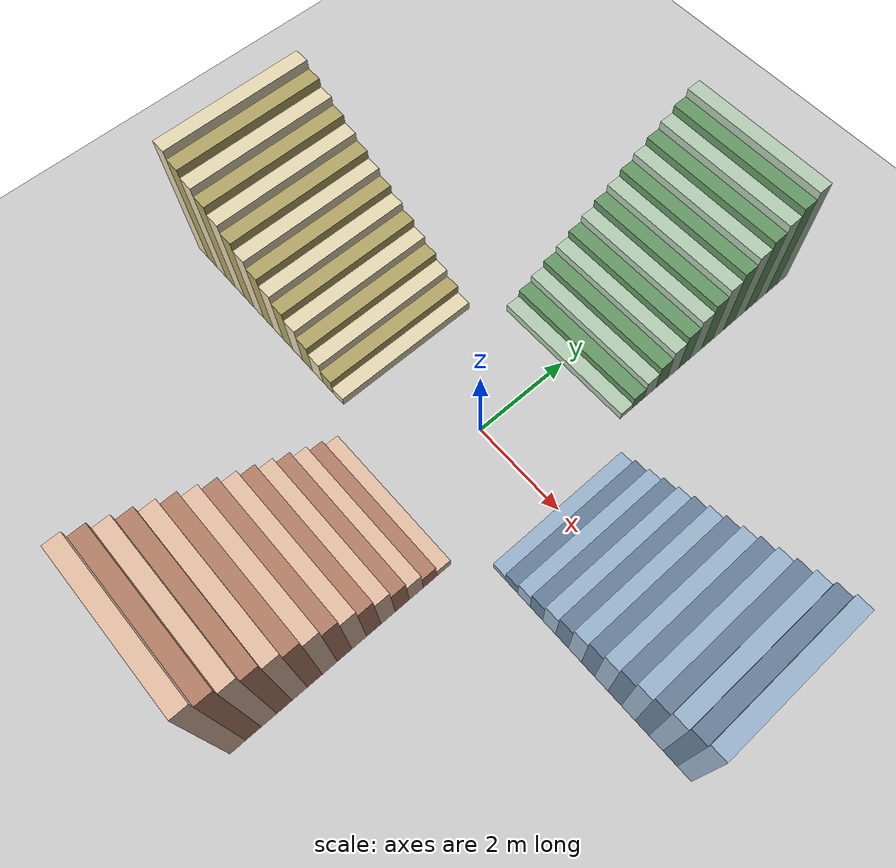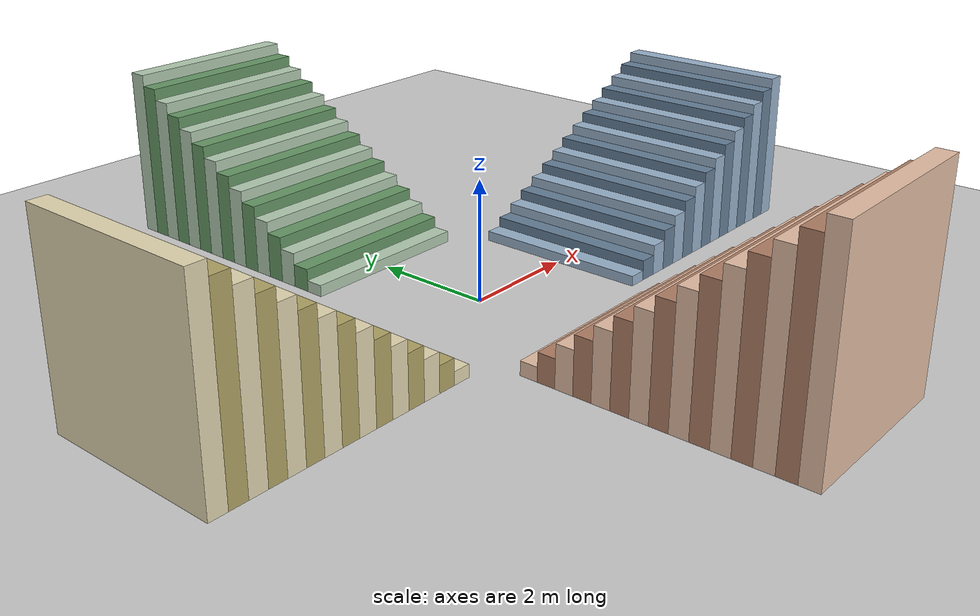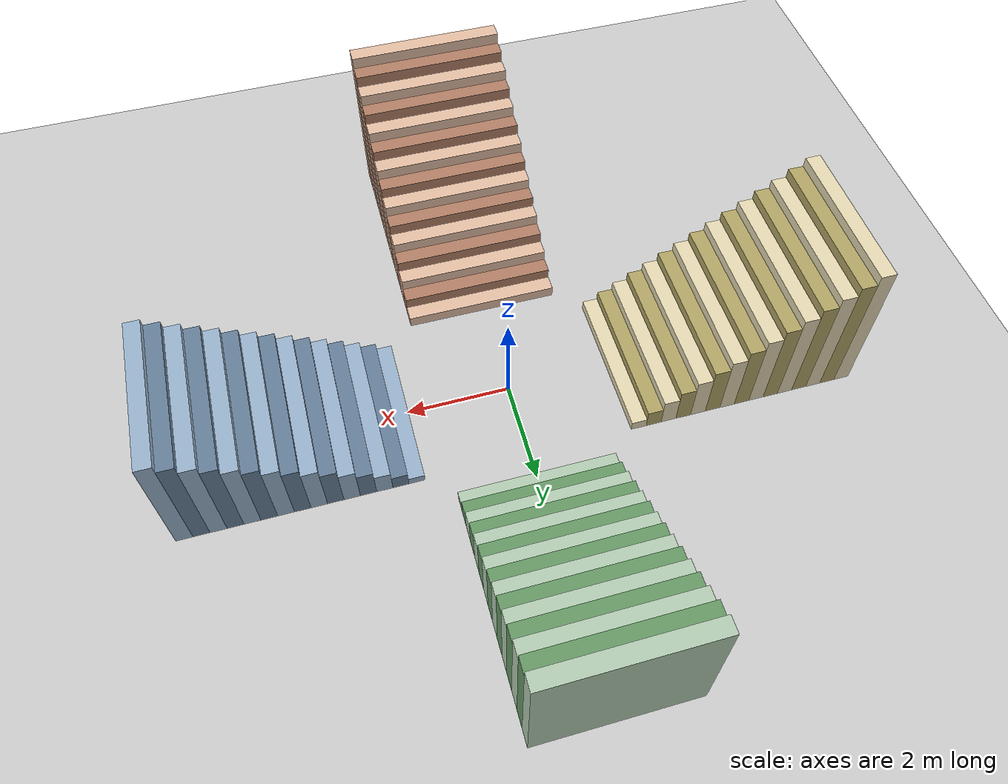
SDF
<?xml version="1.0" ?>
<sdf version="1.5">
  <world name="quadruped_stair_pro_v3_friction">

    <physics type="ode">
      <max_step_size>0.0005</max_step_size>
      <real_time_factor>1</real_time_factor>
      <real_time_update_rate>2000</real_time_update_rate>
      <gravity>0 0 -9.81</gravity>
      <ode>
        <solver>
          <type>quick</type>
          <iters>150</iters>
          <sor>1.0</sor>
        </solver>
        <constraints>
          <cfm>0.0001</cfm>
          <erp>0.2</erp>
          <contact_max_correcting_vel>10.0</contact_max_correcting_vel>
          <contact_surface_layer>0.001</contact_surface_layer>
        </constraints>
      </ode>
    </physics>

    <include><uri>model://sun</uri></include>

    <model name="ground_plane_friction">
      <static>true</static>
      <link name="link">
        <collision name="collision">
          <geometry><plane><normal>0 0 1</normal><size>100 100</size></plane></geometry>
          <surface>
            <friction>
              <ode><mu>1.0</mu><mu2>1.0</mu2></ode>
            </friction>
          </surface>
        </collision>
        <visual name="visual">
          <geometry><plane><normal>0 0 1</normal><size>100 100</size></plane></geometry>
          <material><ambient>0.8 0.8 0.8 1</ambient><diffuse>0.8 0.8 0.8 1</diffuse></material>
        </visual>
      </link>
    </model>

    <model name="stair_challenge_env">
      <static>true</static>

      <!-- 17 cm stairs -->
      <link name="step_17cm_1"><pose>2.15 0 0.085 0 0 0</pose><visual name="v"><geometry><box><size>0.3 3.0 0.17</size></box></geometry><material><ambient>0.6 0.7 0.8 1</ambient><diffuse>0.6 0.7 0.8 1</diffuse></material></visual><collision name="c"><geometry><box><size>0.3 3.0 0.17</size></box></geometry><surface><friction><ode><mu>1.0</mu><mu2>1.0</mu2></ode></friction></surface></collision></link>
      <link name="step_17cm_2"><pose>2.45 0 0.170 0 0 0</pose><visual name="v"><geometry><box><size>0.3 3.0 0.34</size></box></geometry><material><ambient>0.4 0.5 0.6 1</ambient><diffuse>0.4 0.5 0.6 1</diffuse></material></visual><collision name="c"><geometry><box><size>0.3 3.0 0.34</size></box></geometry><surface><friction><ode><mu>1.0</mu><mu2>1.0</mu2></ode></friction></surface></collision></link>
      <link name="step_17cm_3"><pose>2.75 0 0.255 0 0 0</pose><visual name="v"><geometry><box><size>0.3 3.0 0.51</size></box></geometry><material><ambient>0.6 0.7 0.8 1</ambient><diffuse>0.6 0.7 0.8 1</diffuse></material></visual><collision name="c"><geometry><box><size>0.3 3.0 0.51</size></box></geometry><surface><friction><ode><mu>1.0</mu><mu2>1.0</mu2></ode></friction></surface></collision></link>
      <link name="step_17cm_4"><pose>3.05 0 0.340 0 0 0</pose><visual name="v"><geometry><box><size>0.3 3.0 0.68</size></box></geometry><material><ambient>0.4 0.5 0.6 1</ambient><diffuse>0.4 0.5 0.6 1</diffuse></material></visual><collision name="c"><geometry><box><size>0.3 3.0 0.68</size></box></geometry><surface><friction><ode><mu>1.0</mu><mu2>1.0</mu2></ode></friction></surface></collision></link>
      <link name="step_17cm_5"><pose>3.35 0 0.425 0 0 0</pose><visual name="v"><geometry><box><size>0.3 3.0 0.85</size></box></geometry><material><ambient>0.6 0.7 0.8 1</ambient><diffuse>0.6 0.7 0.8 1</diffuse></material></visual><collision name="c"><geometry><box><size>0.3 3.0 0.85</size></box></geometry><surface><friction><ode><mu>1.0</mu><mu2>1.0</mu2></ode></friction></surface></collision></link>
      <link name="step_17cm_6"><pose>3.65 0 0.510 0 0 0</pose><visual name="v"><geometry><box><size>0.3 3.0 1.02</size></box></geometry><material><ambient>0.4 0.5 0.6 1</ambient><diffuse>0.4 0.5 0.6 1</diffuse></material></visual><collision name="c"><geometry><box><size>0.3 3.0 1.02</size></box></geometry><surface><friction><ode><mu>1.0</mu><mu2>1.0</mu2></ode></friction></surface></collision></link>
      <link name="step_17cm_7"><pose>3.95 0 0.595 0 0 0</pose><visual name="v"><geometry><box><size>0.3 3.0 1.19</size></box></geometry><material><ambient>0.6 0.7 0.8 1</ambient><diffuse>0.6 0.7 0.8 1</diffuse></material></visual><collision name="c"><geometry><box><size>0.3 3.0 1.19</size></box></geometry><surface><friction><ode><mu>1.0</mu><mu2>1.0</mu2></ode></friction></surface></collision></link>
      <link name="step_17cm_8"><pose>4.25 0 0.680 0 0 0</pose><visual name="v"><geometry><box><size>0.3 3.0 1.36</size></box></geometry><material><ambient>0.4 0.5 0.6 1</ambient><diffuse>0.4 0.5 0.6 1</diffuse></material></visual><collision name="c"><geometry><box><size>0.3 3.0 1.36</size></box></geometry><surface><friction><ode><mu>1.0</mu><mu2>1.0</mu2></ode></friction></surface></collision></link>
      <link name="step_17cm_9"><pose>4.55 0 0.765 0 0 0</pose><visual name="v"><geometry><box><size>0.3 3.0 1.53</size></box></geometry><material><ambient>0.6 0.7 0.8 1</ambient><diffuse>0.6 0.7 0.8 1</diffuse></material></visual><collision name="c"><geometry><box><size>0.3 3.0 1.53</size></box></geometry><surface><friction><ode><mu>1.0</mu><mu2>1.0</mu2></ode></friction></surface></collision></link>
      <link name="step_17cm_10"><pose>4.85 0 0.850 0 0 0</pose><visual name="v"><geometry><box><size>0.3 3.0 1.70</size></box></geometry><material><ambient>0.4 0.5 0.6 1</ambient><diffuse>0.4 0.5 0.6 1</diffuse></material></visual><collision name="c"><geometry><box><size>0.3 3.0 1.70</size></box></geometry><surface><friction><ode><mu>1.0</mu><mu2>1.0</mu2></ode></friction></surface></collision></link>
      <link name="step_17cm_11"><pose>5.15 0 0.935 0 0 0</pose><visual name="v"><geometry><box><size>0.3 3.0 1.87</size></box></geometry><material><ambient>0.6 0.7 0.8 1</ambient><diffuse>0.6 0.7 0.8 1</diffuse></material></visual><collision name="c"><geometry><box><size>0.3 3.0 1.87</size></box></geometry><surface><friction><ode><mu>1.0</mu><mu2>1.0</mu2></ode></friction></surface></collision></link>
      <link name="step_17cm_12"><pose>5.45 0 1.020 0 0 0</pose><visual name="v"><geometry><box><size>0.3 3.0 2.04</size></box></geometry><material><ambient>0.4 0.5 0.6 1</ambient><diffuse>0.4 0.5 0.6 1</diffuse></material></visual><collision name="c"><geometry><box><size>0.3 3.0 2.04</size></box></geometry><surface><friction><ode><mu>1.0</mu><mu2>1.0</mu2></ode></friction></surface></collision></link>
      <link name="step_17cm_13"><pose>5.75 0 1.105 0 0 0</pose><visual name="v"><geometry><box><size>0.3 3.0 2.21</size></box></geometry><material><ambient>0.6 0.7 0.8 1</ambient><diffuse>0.6 0.7 0.8 1</diffuse></material></visual><collision name="c"><geometry><box><size>0.3 3.0 2.21</size></box></geometry><surface><friction><ode><mu>1.0</mu><mu2>1.0</mu2></ode></friction></surface></collision></link>
      <link name="step_17cm_14"><pose>6.05 0 1.190 0 0 0</pose><visual name="v"><geometry><box><size>0.3 3.0 2.38</size></box></geometry><material><ambient>0.4 0.5 0.6 1</ambient><diffuse>0.4 0.5 0.6 1</diffuse></material></visual><collision name="c"><geometry><box><size>0.3 3.0 2.38</size></box></geometry><surface><friction><ode><mu>1.0</mu><mu2>1.0</mu2></ode></friction></surface></collision></link>
      <link name="step_17cm_15"><pose>6.35 0 1.275 0 0 0</pose><visual name="v"><geometry><box><size>0.3 3.0 2.55</size></box></geometry><material><ambient>0.6 0.7 0.8 1</ambient><diffuse>0.6 0.7 0.8 1</diffuse></material></visual><collision name="c"><geometry><box><size>0.3 3.0 2.55</size></box></geometry><surface><friction><ode><mu>1.0</mu><mu2>1.0</mu2></ode></friction></surface></collision></link>

      <!-- 19 cm stairs -->
      <link name="step_19cm_1"><pose>0 2.15 0.095 0 0 0</pose><visual name="v"><geometry><box><size>3.0 0.3 0.19</size></box></geometry><material><ambient>0.7 0.8 0.7 1</ambient><diffuse>0.7 0.8 0.7 1</diffuse></material></visual><collision name="c"><geometry><box><size>3.0 0.3 0.19</size></box></geometry><surface><friction><ode><mu>1.0</mu><mu2>1.0</mu2></ode></friction></surface></collision></link>
      <link name="step_19cm_2"><pose>0 2.45 0.190 0 0 0</pose><visual name="v"><geometry><box><size>3.0 0.3 0.38</size></box></geometry><material><ambient>0.4 0.6 0.4 1</ambient><diffuse>0.4 0.6 0.4 1</diffuse></material></visual><collision name="c"><geometry><box><size>3.0 0.3 0.38</size></box></geometry><surface><friction><ode><mu>1.0</mu><mu2>1.0</mu2></ode></friction></surface></collision></link>
      <link name="step_19cm_3"><pose>0 2.75 0.285 0 0 0</pose><visual name="v"><geometry><box><size>3.0 0.3 0.57</size></box></geometry><material><ambient>0.7 0.8 0.7 1</ambient><diffuse>0.7 0.8 0.7 1</diffuse></material></visual><collision name="c"><geometry><box><size>3.0 0.3 0.57</size></box></geometry><surface><friction><ode><mu>1.0</mu><mu2>1.0</mu2></ode></friction></surface></collision></link>
      <link name="step_19cm_4"><pose>0 3.05 0.380 0 0 0</pose><visual name="v"><geometry><box><size>3.0 0.3 0.76</size></box></geometry><material><ambient>0.4 0.6 0.4 1</ambient><diffuse>0.4 0.6 0.4 1</diffuse></material></visual><collision name="c"><geometry><box><size>3.0 0.3 0.76</size></box></geometry><surface><friction><ode><mu>1.0</mu><mu2>1.0</mu2></ode></friction></surface></collision></link>
      <link name="step_19cm_5"><pose>0 3.35 0.475 0 0 0</pose><visual name="v"><geometry><box><size>3.0 0.3 0.95</size></box></geometry><material><ambient>0.7 0.8 0.7 1</ambient><diffuse>0.7 0.8 0.7 1</diffuse></material></visual><collision name="c"><geometry><box><size>3.0 0.3 0.95</size></box></geometry><surface><friction><ode><mu>1.0</mu><mu2>1.0</mu2></ode></friction></surface></collision></link>
      <link name="step_19cm_6"><pose>0 3.65 0.570 0 0 0</pose><visual name="v"><geometry><box><size>3.0 0.3 1.14</size></box></geometry><material><ambient>0.4 0.6 0.4 1</ambient><diffuse>0.4 0.6 0.4 1</diffuse></material></visual><collision name="c"><geometry><box><size>3.0 0.3 1.14</size></box></geometry><surface><friction><ode><mu>1.0</mu><mu2>1.0</mu2></ode></friction></surface></collision></link>
      <link name="step_19cm_7"><pose>0 3.95 0.665 0 0 0</pose><visual name="v"><geometry><box><size>3.0 0.3 1.33</size></box></geometry><material><ambient>0.7 0.8 0.7 1</ambient><diffuse>0.7 0.8 0.7 1</diffuse></material></visual><collision name="c"><geometry><box><size>3.0 0.3 1.33</size></box></geometry><surface><friction><ode><mu>1.0</mu><mu2>1.0</mu2></ode></friction></surface></collision></link>
      <link name="step_19cm_8"><pose>0 4.25 0.760 0 0 0</pose><visual name="v"><geometry><box><size>3.0 0.3 1.52</size></box></geometry><material><ambient>0.4 0.6 0.4 1</ambient><diffuse>0.4 0.6 0.4 1</diffuse></material></visual><collision name="c"><geometry><box><size>3.0 0.3 1.52</size></box></geometry><surface><friction><ode><mu>1.0</mu><mu2>1.0</mu2></ode></friction></surface></collision></link>
      <link name="step_19cm_9"><pose>0 4.55 0.855 0 0 0</pose><visual name="v"><geometry><box><size>3.0 0.3 1.71</size></box></geometry><material><ambient>0.7 0.8 0.7 1</ambient><diffuse>0.7 0.8 0.7 1</diffuse></material></visual><collision name="c"><geometry><box><size>3.0 0.3 1.71</size></box></geometry><surface><friction><ode><mu>1.0</mu><mu2>1.0</mu2></ode></friction></surface></collision></link>
      <link name="step_19cm_10"><pose>0 4.85 0.950 0 0 0</pose><visual name="v"><geometry><box><size>3.0 0.3 1.90</size></box></geometry><material><ambient>0.4 0.6 0.4 1</ambient><diffuse>0.4 0.6 0.4 1</diffuse></material></visual><collision name="c"><geometry><box><size>3.0 0.3 1.90</size></box></geometry><surface><friction><ode><mu>1.0</mu><mu2>1.0</mu2></ode></friction></surface></collision></link>
      <link name="step_19cm_11"><pose>0 5.15 1.045 0 0 0</pose><visual name="v"><geometry><box><size>3.0 0.3 2.09</size></box></geometry><material><ambient>0.7 0.8 0.7 1</ambient><diffuse>0.7 0.8 0.7 1</diffuse></material></visual><collision name="c"><geometry><box><size>3.0 0.3 2.09</size></box></geometry><surface><friction><ode><mu>1.0</mu><mu2>1.0</mu2></ode></friction></surface></collision></link>
      <link name="step_19cm_12"><pose>0 5.45 1.140 0 0 0</pose><visual name="v"><geometry><box><size>3.0 0.3 2.28</size></box></geometry><material><ambient>0.4 0.6 0.4 1</ambient><diffuse>0.4 0.6 0.4 1</diffuse></material></visual><collision name="c"><geometry><box><size>3.0 0.3 2.28</size></box></geometry><surface><friction><ode><mu>1.0</mu><mu2>1.0</mu2></ode></friction></surface></collision></link>
      <link name="step_19cm_13"><pose>0 5.75 1.235 0 0 0</pose><visual name="v"><geometry><box><size>3.0 0.3 2.47</size></box></geometry><material><ambient>0.7 0.8 0.7 1</ambient><diffuse>0.7 0.8 0.7 1</diffuse></material></visual><collision name="c"><geometry><box><size>3.0 0.3 2.47</size></box></geometry><surface><friction><ode><mu>1.0</mu><mu2>1.0</mu2></ode></friction></surface></collision></link>
      <link name="step_19cm_14"><pose>0 6.05 1.330 0 0 0</pose><visual name="v"><geometry><box><size>3.0 0.3 2.66</size></box></geometry><material><ambient>0.4 0.6 0.4 1</ambient><diffuse>0.4 0.6 0.4 1</diffuse></material></visual><collision name="c"><geometry><box><size>3.0 0.3 2.66</size></box></geometry><surface><friction><ode><mu>1.0</mu><mu2>1.0</mu2></ode></friction></surface></collision></link>
      <link name="step_19cm_15"><pose>0 6.35 1.425 0 0 0</pose><visual name="v"><geometry><box><size>3.0 0.3 2.85</size></box></geometry><material><ambient>0.7 0.8 0.7 1</ambient><diffuse>0.7 0.8 0.7 1</diffuse></material></visual><collision name="c"><geometry><box><size>3.0 0.3 2.85</size></box></geometry><surface><friction><ode><mu>1.0</mu><mu2>1.0</mu2></ode></friction></surface></collision></link>

      <!-- 21 cm stairs -->
      <link name="step_21cm_1"><pose>-2.15 0 0.105 0 0 0</pose><visual name="v"><geometry><box><size>0.3 3.0 0.21</size></box></geometry><material><ambient>0.9 0.85 0.7 1</ambient><diffuse>0.9 0.85 0.7 1</diffuse></material></visual><collision name="c"><geometry><box><size>0.3 3.0 0.21</size></box></geometry><surface><friction><ode><mu>1.0</mu><mu2>1.0</mu2></ode></friction></surface></collision></link>
      <link name="step_21cm_2"><pose>-2.45 0 0.210 0 0 0</pose><visual name="v"><geometry><box><size>0.3 3.0 0.42</size></box></geometry><material><ambient>0.7 0.65 0.4 1</ambient><diffuse>0.7 0.65 0.4 1</diffuse></material></visual><collision name="c"><geometry><box><size>0.3 3.0 0.42</size></box></geometry><surface><friction><ode><mu>1.0</mu><mu2>1.0</mu2></ode></friction></surface></collision></link>
      <link name="step_21cm_3"><pose>-2.75 0 0.315 0 0 0</pose><visual name="v"><geometry><box><size>0.3 3.0 0.63</size></box></geometry><material><ambient>0.9 0.85 0.7 1</ambient><diffuse>0.9 0.85 0.7 1</diffuse></material></visual><collision name="c"><geometry><box><size>0.3 3.0 0.63</size></box></geometry><surface><friction><ode><mu>1.0</mu><mu2>1.0</mu2></ode></friction></surface></collision></link>
      <link name="step_21cm_4"><pose>-3.05 0 0.420 0 0 0</pose><visual name="v"><geometry><box><size>0.3 3.0 0.84</size></box></geometry><material><ambient>0.7 0.65 0.4 1</ambient><diffuse>0.7 0.65 0.4 1</diffuse></material></visual><collision name="c"><geometry><box><size>0.3 3.0 0.84</size></box></geometry><surface><friction><ode><mu>1.0</mu><mu2>1.0</mu2></ode></friction></surface></collision></link>
      <link name="step_21cm_5"><pose>-3.35 0 0.525 0 0 0</pose><visual name="v"><geometry><box><size>0.3 3.0 1.05</size></box></geometry><material><ambient>0.9 0.85 0.7 1</ambient><diffuse>0.9 0.85 0.7 1</diffuse></material></visual><collision name="c"><geometry><box><size>0.3 3.0 1.05</size></box></geometry><surface><friction><ode><mu>1.0</mu><mu2>1.0</mu2></ode></friction></surface></collision></link>
      <link name="step_21cm_6"><pose>-3.65 0 0.630 0 0 0</pose><visual name="v"><geometry><box><size>0.3 3.0 1.26</size></box></geometry><material><ambient>0.7 0.65 0.4 1</ambient><diffuse>0.7 0.65 0.4 1</diffuse></material></visual><collision name="c"><geometry><box><size>0.3 3.0 1.26</size></box></geometry><surface><friction><ode><mu>1.0</mu><mu2>1.0</mu2></ode></friction></surface></collision></link>
      <link name="step_21cm_7"><pose>-3.95 0 0.735 0 0 0</pose><visual name="v"><geometry><box><size>0.3 3.0 1.47</size></box></geometry><material><ambient>0.9 0.85 0.7 1</ambient><diffuse>0.9 0.85 0.7 1</diffuse></material></visual><collision name="c"><geometry><box><size>0.3 3.0 1.47</size></box></geometry><surface><friction><ode><mu>1.0</mu><mu2>1.0</mu2></ode></friction></surface></collision></link>
      <link name="step_21cm_8"><pose>-4.25 0 0.840 0 0 0</pose><visual name="v"><geometry><box><size>0.3 3.0 1.68</size></box></geometry><material><ambient>0.7 0.65 0.4 1</ambient><diffuse>0.7 0.65 0.4 1</diffuse></material></visual><collision name="c"><geometry><box><size>0.3 3.0 1.68</size></box></geometry><surface><friction><ode><mu>1.0</mu><mu2>1.0</mu2></ode></friction></surface></collision></link>
      <link name="step_21cm_9"><pose>-4.55 0 0.945 0 0 0</pose><visual name="v"><geometry><box><size>0.3 3.0 1.89</size></box></geometry><material><ambient>0.9 0.85 0.7 1</ambient><diffuse>0.9 0.85 0.7 1</diffuse></material></visual><collision name="c"><geometry><box><size>0.3 3.0 1.89</size></box></geometry><surface><friction><ode><mu>1.0</mu><mu2>1.0</mu2></ode></friction></surface></collision></link>
      <link name="step_21cm_10"><pose>-4.85 0 1.050 0 0 0</pose><visual name="v"><geometry><box><size>0.3 3.0 2.10</size></box></geometry><material><ambient>0.7 0.65 0.4 1</ambient><diffuse>0.7 0.65 0.4 1</diffuse></material></visual><collision name="c"><geometry><box><size>0.3 3.0 2.10</size></box></geometry><surface><friction><ode><mu>1.0</mu><mu2>1.0</mu2></ode></friction></surface></collision></link>
      <link name="step_21cm_11"><pose>-5.15 0 1.155 0 0 0</pose><visual name="v"><geometry><box><size>0.3 3.0 2.31</size></box></geometry><material><ambient>0.9 0.85 0.7 1</ambient><diffuse>0.9 0.85 0.7 1</diffuse></material></visual><collision name="c"><geometry><box><size>0.3 3.0 2.31</size></box></geometry><surface><friction><ode><mu>1.0</mu><mu2>1.0</mu2></ode></friction></surface></collision></link>
      <link name="step_21cm_12"><pose>-5.45 0 1.260 0 0 0</pose><visual name="v"><geometry><box><size>0.3 3.0 2.52</size></box></geometry><material><ambient>0.7 0.65 0.4 1</ambient><diffuse>0.7 0.65 0.4 1</diffuse></material></visual><collision name="c"><geometry><box><size>0.3 3.0 2.52</size></box></geometry><surface><friction><ode><mu>1.0</mu><mu2>1.0</mu2></ode></friction></surface></collision></link>
      <link name="step_21cm_13"><pose>-5.75 0 1.365 0 0 0</pose><visual name="v"><geometry><box><size>0.3 3.0 2.73</size></box></geometry><material><ambient>0.9 0.85 0.7 1</ambient><diffuse>0.9 0.85 0.7 1</diffuse></material></visual><collision name="c"><geometry><box><size>0.3 3.0 2.73</size></box></geometry><surface><friction><ode><mu>1.0</mu><mu2>1.0</mu2></ode></friction></surface></collision></link>
      <link name="step_21cm_14"><pose>-6.05 0 1.470 0 0 0</pose><visual name="v"><geometry><box><size>0.3 3.0 2.94</size></box></geometry><material><ambient>0.7 0.65 0.4 1</ambient><diffuse>0.7 0.65 0.4 1</diffuse></material></visual><collision name="c"><geometry><box><size>0.3 3.0 2.94</size></box></geometry><surface><friction><ode><mu>1.0</mu><mu2>1.0</mu2></ode></friction></surface></collision></link>
      <link name="step_21cm_15"><pose>-6.35 0 1.575 0 0 0</pose><visual name="v"><geometry><box><size>0.3 3.0 3.15</size></box></geometry><material><ambient>0.9 0.85 0.7 1</ambient><diffuse>0.9 0.85 0.7 1</diffuse></material></visual><collision name="c"><geometry><box><size>0.3 3.0 3.15</size></box></geometry><surface><friction><ode><mu>1.0</mu><mu2>1.0</mu2></ode></friction></surface></collision></link>

      <!-- 23 cm stairs -->
      <link name="step_23cm_1"><pose>0 -2.15 0.115 0 0 0</pose><visual name="v"><geometry><box><size>3.0 0.3 0.23</size></box></geometry><material><ambient>0.9 0.75 0.65 1</ambient><diffuse>0.9 0.75 0.65 1</diffuse></material></visual><collision name="c"><geometry><box><size>3.0 0.3 0.23</size></box></geometry><surface><friction><ode><mu>1.0</mu><mu2>1.0</mu2></ode></friction></surface></collision></link>
      <link name="step_23cm_2"><pose>0 -2.45 0.230 0 0 0</pose><visual name="v"><geometry><box><size>3.0 0.3 0.46</size></box></geometry><material><ambient>0.7 0.5 0.4 1</ambient><diffuse>0.7 0.5 0.4 1</diffuse></material></visual><collision name="c"><geometry><box><size>3.0 0.3 0.46</size></box></geometry><surface><friction><ode><mu>1.0</mu><mu2>1.0</mu2></ode></friction></surface></collision></link>
      <link name="step_23cm_3"><pose>0 -2.75 0.345 0 0 0</pose><visual name="v"><geometry><box><size>3.0 0.3 0.69</size></box></geometry><material><ambient>0.9 0.75 0.65 1</ambient><diffuse>0.9 0.75 0.65 1</diffuse></material></visual><collision name="c"><geometry><box><size>3.0 0.3 0.69</size></box></geometry><surface><friction><ode><mu>1.0</mu><mu2>1.0</mu2></ode></friction></surface></collision></link>
      <link name="step_23cm_4"><pose>0 -3.05 0.460 0 0 0</pose><visual name="v"><geometry><box><size>3.0 0.3 0.92</size></box></geometry><material><ambient>0.7 0.5 0.4 1</ambient><diffuse>0.7 0.5 0.4 1</diffuse></material></visual><collision name="c"><geometry><box><size>3.0 0.3 0.92</size></box></geometry><surface><friction><ode><mu>1.0</mu><mu2>1.0</mu2></ode></friction></surface></collision></link>
      <link name="step_23cm_5"><pose>0 -3.35 0.575 0 0 0</pose><visual name="v"><geometry><box><size>3.0 0.3 1.15</size></box></geometry><material><ambient>0.9 0.75 0.65 1</ambient><diffuse>0.9 0.75 0.65 1</diffuse></material></visual><collision name="c"><geometry><box><size>3.0 0.3 1.15</size></box></geometry><surface><friction><ode><mu>1.0</mu><mu2>1.0</mu2></ode></friction></surface></collision></link>
      <link name="step_23cm_6"><pose>0 -3.65 0.690 0 0 0</pose><visual name="v"><geometry><box><size>3.0 0.3 1.38</size></box></geometry><material><ambient>0.7 0.5 0.4 1</ambient><diffuse>0.7 0.5 0.4 1</diffuse></material></visual><collision name="c"><geometry><box><size>3.0 0.3 1.38</size></box></geometry><surface><friction><ode><mu>1.0</mu><mu2>1.0</mu2></ode></friction></surface></collision></link>
      <link name="step_23cm_7"><pose>0 -3.95 0.805 0 0 0</pose><visual name="v"><geometry><box><size>3.0 0.3 1.61</size></box></geometry><material><ambient>0.9 0.75 0.65 1</ambient><diffuse>0.9 0.75 0.65 1</diffuse></material></visual><collision name="c"><geometry><box><size>3.0 0.3 1.61</size></box></geometry><surface><friction><ode><mu>1.0</mu><mu2>1.0</mu2></ode></friction></surface></collision></link>
      <link name="step_23cm_8"><pose>0 -4.25 0.920 0 0 0</pose><visual name="v"><geometry><box><size>3.0 0.3 1.84</size></box></geometry><material><ambient>0.7 0.5 0.4 1</ambient><diffuse>0.7 0.5 0.4 1</diffuse></material></visual><collision name="c"><geometry><box><size>3.0 0.3 1.84</size></box></geometry><surface><friction><ode><mu>1.0</mu><mu2>1.0</mu2></ode></friction></surface></collision></link>
      <link name="step_23cm_9"><pose>0 -4.55 1.035 0 0 0</pose><visual name="v"><geometry><box><size>3.0 0.3 2.07</size></box></geometry><material><ambient>0.9 0.75 0.65 1</ambient><diffuse>0.9 0.75 0.65 1</diffuse></material></visual><collision name="c"><geometry><box><size>3.0 0.3 2.07</size></box></geometry><surface><friction><ode><mu>1.0</mu><mu2>1.0</mu2></ode></friction></surface></collision></link>
      <link name="step_23cm_10"><pose>0 -4.85 1.150 0 0 0</pose><visual name="v"><geometry><box><size>3.0 0.3 2.30</size></box></geometry><material><ambient>0.7 0.5 0.4 1</ambient><diffuse>0.7 0.5 0.4 1</diffuse></material></visual><collision name="c"><geometry><box><size>3.0 0.3 2.30</size></box></geometry><surface><friction><ode><mu>1.0</mu><mu2>1.0</mu2></ode></friction></surface></collision></link>
      <link name="step_23cm_11"><pose>0 -5.15 1.265 0 0 0</pose><visual name="v"><geometry><box><size>3.0 0.3 2.53</size></box></geometry><material><ambient>0.9 0.75 0.65 1</ambient><diffuse>0.9 0.75 0.65 1</diffuse></material></visual><collision name="c"><geometry><box><size>3.0 0.3 2.53</size></box></geometry><surface><friction><ode><mu>1.0</mu><mu2>1.0</mu2></ode></friction></surface></collision></link>
      <link name="step_23cm_12"><pose>0 -5.45 1.380 0 0 0</pose><visual name="v"><geometry><box><size>3.0 0.3 2.76</size></box></geometry><material><ambient>0.7 0.5 0.4 1</ambient><diffuse>0.7 0.5 0.4 1</diffuse></material></visual><collision name="c"><geometry><box><size>3.0 0.3 2.76</size></box></geometry><surface><friction><ode><mu>1.0</mu><mu2>1.0</mu2></ode></friction></surface></collision></link>
      <link name="step_23cm_13"><pose>0 -5.75 1.495 0 0 0</pose><visual name="v"><geometry><box><size>3.0 0.3 2.99</size></box></geometry><material><ambient>0.9 0.75 0.65 1</ambient><diffuse>0.9 0.75 0.65 1</diffuse></material></visual><collision name="c"><geometry><box><size>3.0 0.3 2.99</size></box></geometry><surface><friction><ode><mu>1.0</mu><mu2>1.0</mu2></ode></friction></surface></collision></link>
      <link name="step_23cm_14"><pose>0 -6.05 1.610 0 0 0</pose><visual name="v"><geometry><box><size>3.0 0.3 3.22</size></box></geometry><material><ambient>0.7 0.5 0.4 1</ambient><diffuse>0.7 0.5 0.4 1</diffuse></material></visual><collision name="c"><geometry><box><size>3.0 0.3 3.22</size></box></geometry><surface><friction><ode><mu>1.0</mu><mu2>1.0</mu2></ode></friction></surface></collision></link>
      <link name="step_23cm_15"><pose>0 -6.35 1.725 0 0 0</pose><visual name="v"><geometry><box><size>3.0 0.3 3.45</size></box></geometry><material><ambient>0.9 0.75 0.65 1</ambient><diffuse>0.9 0.75 0.65 1</diffuse></material></visual><collision name="c"><geometry><box><size>3.0 0.3 3.45</size></box></geometry><surface><friction><ode><mu>1.0</mu><mu2>1.0</mu2></ode></friction></surface></collision></link>

    </model>
  </world>
</sdf>
